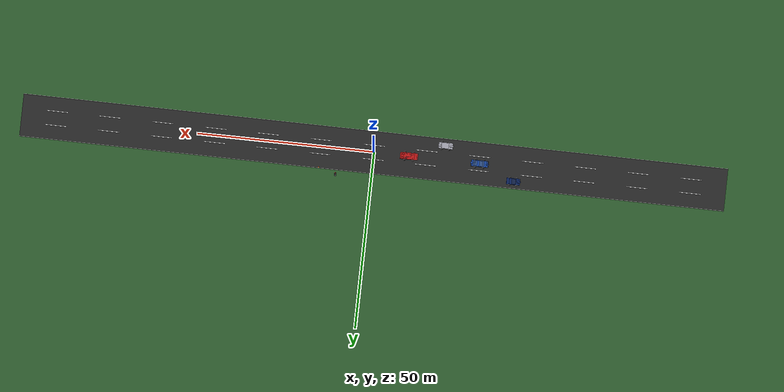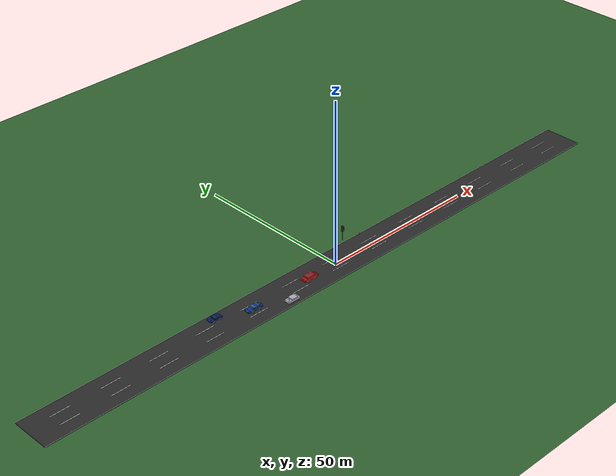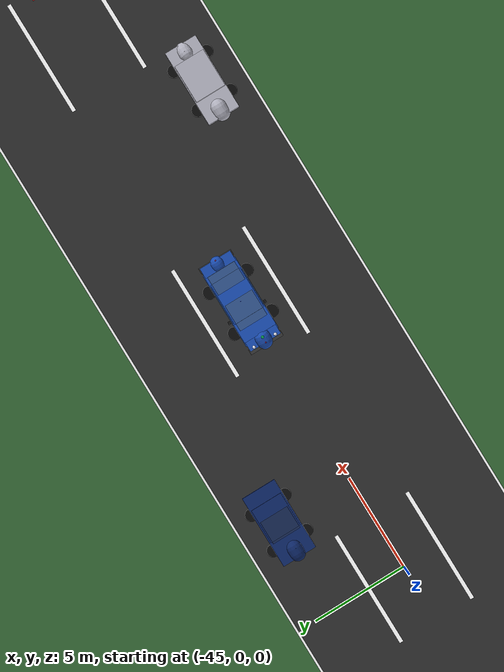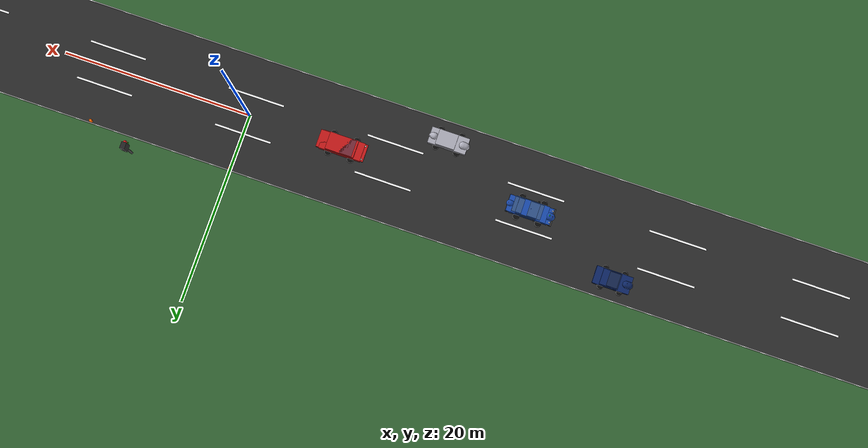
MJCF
<mujoco model="traffic_scene_v2">
  <compiler angle="degree" coordinate="local" inertiafromgeom="true" autolimits="true"/>

  <option timestep="0.001" gravity="0 0 -9.81" iterations="50" ls_iterations="20">
    <flag warmstart="enable" contact="enable" override="enable"/>
  </option>

  <visual>
    <global offwidth="1920" offheight="1080"/>
    <quality shadowsize="4096"/>
    <map force="0.1" fogstart="10" fogend="100" znear="0.05"/>
    <headlight ambient="0.6 0.6 0.6" diffuse="0.8 0.8 0.8"/>
    <rgba haze="0.8 0.9 1 1"/>
  </visual>

  <asset>
    <!-- 高质量纹理 -->
    <texture name="asphalt_hq" type="2d" builtin="checker" rgb1="0.15 0.15 0.15" rgb2="0.2 0.2 0.2" width="1024" height="1024"/>
    <material name="road_hq" texture="asphalt_hq" texrepeat="100 100" specular="0.05" shininess="0.05"/>

    <texture name="grass_tex" type="2d" builtin="flat" rgb1="0.2 0.4 0.2" width="256" height="256"/>
    <material name="grass_mat" texture="grass_tex" specular="0" shininess="0"/>

    <texture name="car_paint_blue" type="2d" builtin="flat" rgb1="0.1 0.3 0.7" width="64" height="64"/>
    <material name="car_blue" texture="car_paint_blue" specular="1" shininess="0.8" reflectance="0.5"/>

    <texture name="car_paint_red" type="2d" builtin="flat" rgb1="0.8 0.1 0.1" width="64" height="64"/>
    <material name="car_red" texture="car_paint_red" specular="1" shininess="0.8" reflectance="0.5"/>

    <texture name="car_paint_silver" type="2d" builtin="flat" rgb1="0.7 0.7 0.75" width="64" height="64"/>
    <material name="car_silver" texture="car_paint_silver" specular="1" shininess="0.9" reflectance="0.6"/>

    <texture name="glass_tex" type="2d" builtin="flat" rgb1="0.3 0.4 0.5" width="32" height="32"/>
    <material name="glass" texture="glass_tex" specular="1" shininess="1" reflectance="0.7" rgba="0.3 0.4 0.5 0.7"/>

    <texture name="chrome" type="2d" builtin="flat" rgb1="0.9 0.9 0.95" width="32" height="32"/>
    <material name="chrome_mat" texture="chrome" specular="1" shininess="1" reflectance="0.9"/>

    <texture name="rubber" type="2d" builtin="flat" rgb1="0.05 0.05 0.05" width="32" height="32"/>
    <material name="tire_mat" texture="rubber" specular="0.2" shininess="0.1"/>

    <texture name="white_line" type="2d" builtin="flat" rgb1="1 1 1" width="32" height="32"/>
    <material name="white_mat" texture="white_line" specular="0.3" shininess="0.2"/>

  </asset>

  <default>
    <!-- 车辆悬挂默认配置 -->
    <default class="suspension">
      <joint type="slide" axis="0 0 1" range="-0.1 0.1" stiffness="50000" damping="5000"/>
    </default>

    <!-- 转向关节配置 -->
    <default class="steering">
      <joint type="hinge" axis="0 0 1" range="-35 35" damping="10" armature="0.1"/>
    </default>

    <!-- 车轮滚动关节 -->
    <default class="wheel_roll">
      <joint type="hinge" axis="0 1 0" damping="0.5" armature="0.05"/>
    </default>

    <!-- 轮胎配置 -->
    <default class="tire">
      <geom type="cylinder" friction="1.5 0.8 0.5" condim="3" solimp="0.9 0.95 0.001" solref="0.005 1"/>
    </default>
  </default>

  <worldbody>
    <!-- 天空盒 -->

    <!-- 增强照明 -->
    <light directional="true" pos="0 0 30" dir="0 0 -1" diffuse="0.9 0.9 0.9" specular="0.3 0.3 0.3"/>
    <light directional="true" pos="50 50 40" dir="-1 -1 -1" diffuse="0.4 0.4 0.4"/>
    <light directional="true" pos="-50 50 40" dir="1 -1 -1" diffuse="0.4 0.4 0.4"/>
    <light directional="false" pos="0 0 10" diffuse="0.2 0.2 0.2" specular="0.1 0.1 0.1"/>

    <!-- 地面 -->
    <geom name="ground" type="plane" size="200 200 0.1" material="grass_mat" condim="3"/>

    <!-- 主路面 - 更长更宽 -->
    <geom name="main_road" type="box" size="100 6.0 0.08" pos="0 0 0.08" material="road_hq" mass="50000"/>

    <!-- 精细车道线 -->
    <geom name="left_edge" type="capsule" fromto="-100 6.0 0.17 100 6.0 0.17" size="0.06" rgba="1 1 1 1"/>
    <geom name="right_edge" type="capsule" fromto="-100 -6.0 0.17 100 -6.0 0.17" size="0.06" rgba="1 1 1 1"/>

    <!-- 虚线车道标记 -->
    <body name="lane_markers">
      <geom name="lm_1_1" type="box" size="3 0.1 0.01" pos="-90 2 0.17" rgba="1 1 1 1"/>
      <geom name="lm_1_2" type="box" size="3 0.1 0.01" pos="-75 2 0.17" rgba="1 1 1 1"/>
      <geom name="lm_1_3" type="box" size="3 0.1 0.01" pos="-60 2 0.17" rgba="1 1 1 1"/>
      <geom name="lm_1_4" type="box" size="3 0.1 0.01" pos="-45 2 0.17" rgba="1 1 1 1"/>
      <geom name="lm_1_5" type="box" size="3 0.1 0.01" pos="-30 2 0.17" rgba="1 1 1 1"/>
      <geom name="lm_1_6" type="box" size="3 0.1 0.01" pos="-15 2 0.17" rgba="1 1 1 1"/>
      <geom name="lm_1_7" type="box" size="3 0.1 0.01" pos="0 2 0.17" rgba="1 1 1 1"/>
      <geom name="lm_1_8" type="box" size="3 0.1 0.01" pos="15 2 0.17" rgba="1 1 1 1"/>
      <geom name="lm_1_9" type="box" size="3 0.1 0.01" pos="30 2 0.17" rgba="1 1 1 1"/>
      <geom name="lm_1_10" type="box" size="3 0.1 0.01" pos="45 2 0.17" rgba="1 1 1 1"/>
      <geom name="lm_1_11" type="box" size="3 0.1 0.01" pos="60 2 0.17" rgba="1 1 1 1"/>
      <geom name="lm_1_12" type="box" size="3 0.1 0.01" pos="75 2 0.17" rgba="1 1 1 1"/>
      <geom name="lm_1_13" type="box" size="3 0.1 0.01" pos="90 2 0.17" rgba="1 1 1 1"/>

      <geom name="lm_2_1" type="box" size="3 0.1 0.01" pos="-90 -2 0.17" rgba="1 1 1 1"/>
      <geom name="lm_2_2" type="box" size="3 0.1 0.01" pos="-75 -2 0.17" rgba="1 1 1 1"/>
      <geom name="lm_2_3" type="box" size="3 0.1 0.01" pos="-60 -2 0.17" rgba="1 1 1 1"/>
      <geom name="lm_2_4" type="box" size="3 0.1 0.01" pos="-45 -2 0.17" rgba="1 1 1 1"/>
      <geom name="lm_2_5" type="box" size="3 0.1 0.01" pos="-30 -2 0.17" rgba="1 1 1 1"/>
      <geom name="lm_2_6" type="box" size="3 0.1 0.01" pos="-15 -2 0.17" rgba="1 1 1 1"/>
      <geom name="lm_2_7" type="box" size="3 0.1 0.01" pos="0 -2 0.17" rgba="1 1 1 1"/>
      <geom name="lm_2_8" type="box" size="3 0.1 0.01" pos="15 -2 0.17" rgba="1 1 1 1"/>
      <geom name="lm_2_9" type="box" size="3 0.1 0.01" pos="30 -2 0.17" rgba="1 1 1 1"/>
      <geom name="lm_2_10" type="box" size="3 0.1 0.01" pos="45 -2 0.17" rgba="1 1 1 1"/>
      <geom name="lm_2_11" type="box" size="3 0.1 0.01" pos="60 -2 0.17" rgba="1 1 1 1"/>
      <geom name="lm_2_12" type="box" size="3 0.1 0.01" pos="75 -2 0.17" rgba="1 1 1 1"/>
      <geom name="lm_2_13" type="box" size="3 0.1 0.01" pos="90 -2 0.17" rgba="1 1 1 1"/>
    </body>

    <!-- 改进的主车 - 基于真实车辆尺寸 (类似轿车) -->
    <body name="ego_vehicle" pos="-30 0 0.5">
      <freejoint/>
      <inertial pos="0 0 0.15" mass="1450" diaginertia="580 1950 2180"/>

      <!-- 车身主体 - 更细致的分段 -->
      <!-- 底盘 -->
      <geom name="ego_chassis_bottom" type="box" size="2.0 0.9 0.08" pos="0 0 -0.02" material="car_blue"/>

      <!-- 车身中部 -->
      <geom name="ego_chassis_mid" type="box" size="1.8 0.88 0.3" pos="0 0 0.25" material="car_blue"/>

      <!-- 引擎盖（流线型） -->
      <geom name="ego_hood" type="box" size="0.85 0.85 0.12" pos="-1.45 0 0.18" material="car_blue"/>
      <geom name="ego_hood_front" type="capsule" fromto="-2.2 0 0.2 -2.0 0 0.25" size="0.4" material="car_blue"/>

      <!-- 车顶 -->
      <geom name="ego_roof" type="box" size="1.1 0.82 0.25" pos="0.3 0 0.65" material="car_blue"/>

      <!-- 后备箱 -->
      <geom name="ego_trunk" type="box" size="0.75 0.85 0.18" pos="1.6 0 0.22" material="car_blue"/>
      <geom name="ego_trunk_back" type="capsule" fromto="2.15 0 0.25 2.0 0 0.2" size="0.35" material="car_blue"/>

      <!-- 窗户 -->
      <geom name="ego_windshield" type="box" size="0.7 0.75 0.35" pos="-0.5 0 0.7" rgba="0.3 0.4 0.5 0.6"/>
      <geom name="ego_rear_window" type="box" size="0.5 0.75 0.3" pos="1.3 0 0.65" rgba="0.3 0.4 0.5 0.6"/>
      <geom name="ego_window_left" type="box" size="1.0 0.02 0.25" pos="0.3 0.88 0.6" rgba="0.3 0.4 0.5 0.6"/>
      <geom name="ego_window_right" type="box" size="1.0 0.02 0.25" pos="0.3 -0.88 0.6" rgba="0.3 0.4 0.5 0.6"/>

      <!-- 保险杠 -->
      <geom name="ego_bumper_front" type="box" size="0.15 0.9 0.12" pos="-2.3 0 0.08" rgba="0.2 0.2 0.2 1"/>
      <geom name="ego_bumper_rear" type="box" size="0.15 0.9 0.12" pos="2.25 0 0.08" rgba="0.2 0.2 0.2 1"/>

      <!-- 车灯 -->
      <geom name="ego_headlight_l" type="sphere" size="0.08" pos="-2.2 0.6 0.3" rgba="0.95 0.95 1 1"/>
      <geom name="ego_headlight_r" type="sphere" size="0.08" pos="-2.2 -0.6 0.3" rgba="0.95 0.95 1 1"/>
      <geom name="ego_taillight_l" type="sphere" size="0.07" pos="2.2 0.65 0.3" rgba="0.9 0.1 0.1 1"/>
      <geom name="ego_taillight_r" type="sphere" size="0.07" pos="2.2 -0.65 0.3" rgba="0.9 0.1 0.1 1"/>

      <!-- 后视镜 -->
      <geom name="ego_mirror_l" type="box" size="0.08 0.05 0.06" pos="-0.6 1.0 0.5" rgba="0.1 0.1 0.1 1"/>
      <geom name="ego_mirror_r" type="box" size="0.08 0.05 0.06" pos="-0.6 -1.0 0.5" rgba="0.1 0.1 0.1 1"/>

      <!-- 改进的悬挂和车轮系统 -->
      <!-- 左前悬挂和车轮 -->
      <body name="suspension_fl" pos="-1.15 1.0 0">
        <joint name="susp_fl" class="suspension"/>
        <inertial pos="0 0 0" mass="15" diaginertia="0.5 0.5 0.5"/>

        <body name="wheel_hub_fl" pos="0 0 -0.1">
          <joint name="steer_fl" class="steering"/>
          <inertial pos="0 0 0" mass="8" diaginertia="0.3 0.3 0.3"/>

          <body name="wheel_fl" pos="0 0.05 0">
            <joint name="roll_fl" class="wheel_roll"/>
            <inertial pos="0 0 0" mass="18" diaginertia="0.8 1.2 0.8"/>
            <geom name="tire_fl" type="cylinder" size="0.33 0.12" rgba="0.05 0.05 0.05 1" material="tire_mat" class="tire"/>
            <geom name="rim_fl" type="cylinder" size="0.25 0.11" pos="0 0 0" rgba="0.8 0.8 0.85 1" material="chrome_mat"/>
            <site name="contact_fl" pos="0 0 -0.33" size="0.01"/>
          </body>
        </body>
      </body>

      <!-- 右前悬挂和车轮 -->
      <body name="suspension_fr" pos="-1.15 -1.0 0">
        <joint name="susp_fr" class="suspension"/>
        <inertial pos="0 0 0" mass="15" diaginertia="0.5 0.5 0.5"/>

        <body name="wheel_hub_fr" pos="0 0 -0.1">
          <joint name="steer_fr" class="steering"/>
          <inertial pos="0 0 0" mass="8" diaginertia="0.3 0.3 0.3"/>

          <body name="wheel_fr" pos="0 -0.05 0">
            <joint name="roll_fr" class="wheel_roll"/>
            <inertial pos="0 0 0" mass="18" diaginertia="0.8 1.2 0.8"/>
            <geom name="tire_fr" type="cylinder" size="0.33 0.12" rgba="0.05 0.05 0.05 1" material="tire_mat" class="tire"/>
            <geom name="rim_fr" type="cylinder" size="0.25 0.11" pos="0 0 0" rgba="0.8 0.8 0.85 1" material="chrome_mat"/>
            <site name="contact_fr" pos="0 0 -0.33" size="0.01"/>
          </body>
        </body>
      </body>

      <!-- 左后悬挂和车轮 -->
      <body name="suspension_rl" pos="1.15 1.0 0">
        <joint name="susp_rl" class="suspension"/>
        <inertial pos="0 0 0" mass="15" diaginertia="0.5 0.5 0.5"/>

        <body name="wheel_rl" pos="0 0.05 -0.1">
          <joint name="roll_rl" class="wheel_roll"/>
          <inertial pos="0 0 0" mass="18" diaginertia="0.8 1.2 0.8"/>
          <geom name="tire_rl" type="cylinder" size="0.33 0.12" rgba="0.05 0.05 0.05 1" material="tire_mat" class="tire"/>
          <geom name="rim_rl" type="cylinder" size="0.25 0.11" pos="0 0 0" rgba="0.8 0.8 0.85 1" material="chrome_mat"/>
          <site name="contact_rl" pos="0 0 -0.33" size="0.01"/>
        </body>
      </body>

      <!-- 右后悬挂和车轮 -->
      <body name="suspension_rr" pos="1.15 -1.0 0">
        <joint name="susp_rr" class="suspension"/>
        <inertial pos="0 0 0" mass="15" diaginertia="0.5 0.5 0.5"/>

        <body name="wheel_rr" pos="0 -0.05 -0.1">
          <joint name="roll_rr" class="wheel_roll"/>
          <inertial pos="0 0 0" mass="18" diaginertia="0.8 1.2 0.8"/>
          <geom name="tire_rr" type="cylinder" size="0.33 0.12" rgba="0.05 0.05 0.05 1" material="tire_mat" class="tire"/>
          <geom name="rim_rr" type="cylinder" size="0.25 0.11" pos="0 0 0" rgba="0.8 0.8 0.85 1" material="chrome_mat"/>
          <site name="contact_rr" pos="0 0 -0.33" size="0.01"/>
        </body>
      </body>

      <!-- 传感器挂载点 -->
      <site name="lidar_mount" pos="-2.0 0 0.9" size="0.08" rgba="0 1 0 0.5"/>
      <site name="camera_front" pos="-2.3 0 0.6" size="0.04" rgba="1 0 0 0.5"/>
      <site name="camera_rear" pos="2.3 0 0.6" size="0.04" rgba="1 0 0 0.5"/>
      <site name="imu_center" pos="0 0 0.3" size="0.03" rgba="1 1 0 0.5"/>
      <site name="gps_antenna" pos="0 0 1.1" size="0.02" rgba="0 0 1 0.5"/>
    </body>

    <!-- 改进的NPC车辆 - 红色SUV -->
    <body name="npc_vehicle_1" pos="-10 0 0.5">
      <freejoint/>
      <inertial pos="0 0 0.2" mass="1800" diaginertia="700 2200 2400"/>

      <!-- SUV车身 -->
      <geom name="npc1_chassis" type="box" size="2.2 0.95 0.35" pos="0 0 0.15" material="car_red"/>
      <geom name="npc1_roof" type="box" size="1.5 0.9 0.3" pos="0 0 0.65" material="car_red"/>
      <geom name="npc1_hood" type="box" size="0.9 0.9 0.15" pos="-1.6 0 0.2" material="car_red"/>
      <geom name="npc1_trunk" type="box" size="0.8 0.9 0.25" pos="1.7 0 0.25" material="car_red"/>

      <!-- 窗户 -->
      <geom name="npc1_windows" type="box" size="1.3 0.85 0.25" pos="0 0 0.7" rgba="0.2 0.3 0.4 0.5"/>

      <!-- 车轮 -->
      <geom name="npc1_wheel_fl" type="cylinder" size="0.35 0.13" pos="-1.2 1.0 -0.15" rgba="0.05 0.05 0.05 1" material="tire_mat"/>
      <geom name="npc1_rim_fl" type="cylinder" size="0.28 0.12" pos="-1.2 1.0 -0.15" material="chrome_mat"/>
      <geom name="npc1_wheel_fr" type="cylinder" size="0.35 0.13" pos="-1.2 -1.0 -0.15" rgba="0.05 0.05 0.05 1" material="tire_mat"/>
      <geom name="npc1_rim_fr" type="cylinder" size="0.28 0.12" pos="-1.2 -1.0 -0.15" material="chrome_mat"/>
      <geom name="npc1_wheel_rl" type="cylinder" size="0.35 0.13" pos="1.2 1.0 -0.15" rgba="0.05 0.05 0.05 1" material="tire_mat"/>
      <geom name="npc1_rim_rl" type="cylinder" size="0.28 0.12" pos="1.2 1.0 -0.15" material="chrome_mat"/>
      <geom name="npc1_wheel_rr" type="cylinder" size="0.35 0.13" pos="1.2 -1.0 -0.15" rgba="0.05 0.05 0.05 1" material="tire_mat"/>
      <geom name="npc1_rim_rr" type="cylinder" size="0.28 0.12" pos="1.2 -1.0 -0.15" material="chrome_mat"/>

      <!-- 车灯 -->
      <geom name="npc1_headlight_l" type="sphere" size="0.08" pos="-2.3 0.7 0.35" rgba="1 1 0.95 1"/>
      <geom name="npc1_headlight_r" type="sphere" size="0.08" pos="-2.3 -0.7 0.35" rgba="1 1 0.95 1"/>
    </body>

    <!-- NPC车辆2 - 银色轿车 -->
    <body name="npc_vehicle_2" pos="-20 -4 0.45">
      <freejoint/>
      <inertial pos="0 0 0.15" mass="1350" diaginertia="550 1850 2050"/>

      <geom name="npc2_chassis" type="box" size="2.0 0.85 0.28" pos="0 0 0.12" material="car_silver"/>
      <geom name="npc2_roof" type="box" size="1.0 0.8 0.24" pos="0.2 0 0.52" material="car_silver"/>
      <geom name="npc2_hood" type="capsule" fromto="-1.8 0 0.2 -1.5 0 0.25" size="0.42" material="car_silver"/>
      <geom name="npc2_trunk" type="capsule" fromto="1.7 0 0.2 1.5 0 0.25" size="0.38" material="car_silver"/>

      <geom name="npc2_windows" type="box" size="0.9 0.75 0.2" pos="0.2 0 0.55" rgba="0.2 0.3 0.4 0.5"/>

      <!-- 车轮 -->
      <geom name="npc2_tire_fl" type="cylinder" size="0.32 0.11" pos="-1.1 0.92 -0.15" rgba="0.05 0.05 0.05 1" material="tire_mat"/>
      <geom name="npc2_rim_fl" type="cylinder" size="0.26 0.10" pos="-1.1 0.92 -0.15" material="chrome_mat"/>
      <geom name="npc2_tire_fr" type="cylinder" size="0.32 0.11" pos="-1.1 -0.92 -0.15" rgba="0.05 0.05 0.05 1" material="tire_mat"/>
      <geom name="npc2_rim_fr" type="cylinder" size="0.26 0.10" pos="-1.1 -0.92 -0.15" material="chrome_mat"/>
      <geom name="npc2_tire_rl" type="cylinder" size="0.32 0.11" pos="1.1 0.92 -0.15" rgba="0.05 0.05 0.05 1" material="tire_mat"/>
      <geom name="npc2_rim_rl" type="cylinder" size="0.26 0.10" pos="1.1 0.92 -0.15" material="chrome_mat"/>
      <geom name="npc2_tire_rr" type="cylinder" size="0.32 0.11" pos="1.1 -0.92 -0.15" rgba="0.05 0.05 0.05 1" material="tire_mat"/>
      <geom name="npc2_rim_rr" type="cylinder" size="0.26 0.10" pos="1.1 -0.92 -0.15" material="chrome_mat"/>
    </body>

    <!-- NPC车辆3 - 蓝色跑车 -->
    <body name="npc_vehicle_3" pos="-40 4 0.4">
      <freejoint/>
      <inertial pos="0 0 0.1" mass="1200" diaginertia="480 1650 1800"/>

      <!-- 跑车低矮车身 -->
      <geom name="npc3_chassis" type="box" size="1.9 0.9 0.22" pos="0 0 0.08" rgba="0.05 0.15 0.4 1"/>
      <geom name="npc3_cabin" type="box" size="0.9 0.82 0.18" pos="0.3 0 0.38" rgba="0.05 0.15 0.4 1"/>
      <geom name="npc3_hood" type="capsule" fromto="-1.7 0 0.15 -1.4 0 0.18" size="0.40" rgba="0.05 0.15 0.4 1"/>

      <geom name="npc3_windshield" type="box" size="0.6 0.75 0.15" pos="-0.1 0 0.42" rgba="0.15 0.2 0.3 0.6"/>

      <!-- 运动轮毂 -->
      <geom name="npc3_tire_fl" type="cylinder" size="0.31 0.14" pos="-1.0 0.95 -0.15" rgba="0.05 0.05 0.05 1" material="tire_mat"/>
      <geom name="npc3_rim_fl" type="cylinder" size="0.25 0.13" pos="-1.0 0.95 -0.15" rgba="0.9 0.9 0.95 1"/>
      <geom name="npc3_tire_fr" type="cylinder" size="0.31 0.14" pos="-1.0 -0.95 -0.15" rgba="0.05 0.05 0.05 1" material="tire_mat"/>
      <geom name="npc3_rim_fr" type="cylinder" size="0.25 0.13" pos="-1.0 -0.95 -0.15" rgba="0.9 0.9 0.95 1"/>
      <geom name="npc3_tire_rl" type="cylinder" size="0.31 0.14" pos="1.0 0.95 -0.15" rgba="0.05 0.05 0.05 1" material="tire_mat"/>
      <geom name="npc3_rim_rl" type="cylinder" size="0.25 0.13" pos="1.0 0.95 -0.15" rgba="0.9 0.9 0.95 1"/>
      <geom name="npc3_tire_rr" type="cylinder" size="0.31 0.14" pos="1.0 -0.95 -0.15" rgba="0.05 0.05 0.05 1" material="tire_mat"/>
      <geom name="npc3_rim_rr" type="cylinder" size="0.25 0.13" pos="1.0 -0.95 -0.15" rgba="0.9 0.9 0.95 1"/>
    </body>

    <!-- 交通设施 -->
    <body name="traffic_light" pos="10 7.5 0">
      <geom name="light_pole" type="cylinder" size="0.12 3.5" rgba="0.25 0.25 0.25 1"/>
      <body name="light_box" pos="0 0 3.5">
        <geom name="light_housing" type="box" size="0.25 0.35 0.8" rgba="0.15 0.15 0.15 1"/>
        <geom name="red_light" type="sphere" size="0.18" pos="0 -0.4 0.45" rgba="0.9 0.1 0.1 1"/>
        <geom name="yellow_light" type="sphere" size="0.18" pos="0 -0.4 0" rgba="0.3 0.3 0.05 1"/>
        <geom name="green_light" type="sphere" size="0.18" pos="0 -0.4 -0.45" rgba="0.1 0.9 0.1 1"/>
      </body>
    </body>

    <!-- 路障 -->
    <body name="cone_1" pos="0 5.8 0.15">
      <geom name="cone1" type="cylinder" fromto="0 0 -0.15 0 0 0.45" size="0.15 0.45" rgba="1 0.4 0 1"/>
    </body>
    <body name="cone_2" pos="15 5.8 0.15">
      <geom name="cone2" type="cylinder" fromto="0 0 -0.15 0 0 0.45" size="0.15 0.45" rgba="1 0.4 0 1"/>
    </body>
  </worldbody>

  <!-- 传感器 -->
  <sensor>
    <!-- 主车传感器 -->
    <framepos name="ego_position" objtype="site" objname="imu_center"/>
    <framequat name="ego_orientation" objtype="site" objname="imu_center"/>
    <framelinvel name="ego_linvel" objtype="site" objname="imu_center"/>
    <frameangvel name="ego_angvel" objtype="site" objname="imu_center"/>
    <accelerometer name="ego_accel" site="imu_center"/>
    <gyro name="ego_gyro" site="imu_center"/>

    <!-- 车轮传感器 -->
    <jointvel name="wheel_fl_speed" joint="roll_fl"/>
    <jointvel name="wheel_fr_speed" joint="roll_fr"/>
    <jointvel name="wheel_rl_speed" joint="roll_rl"/>
    <jointvel name="wheel_rr_speed" joint="roll_rr"/>

    <!-- 转向传感器 -->
    <jointpos name="steer_fl_angle" joint="steer_fl"/>
    <jointpos name="steer_fr_angle" joint="steer_fr"/>

    <!-- 悬挂传感器 -->
    <jointpos name="susp_fl_pos" joint="susp_fl"/>
    <jointpos name="susp_fr_pos" joint="susp_fr"/>
    <jointpos name="susp_rl_pos" joint="susp_rl"/>
    <jointpos name="susp_rr_pos" joint="susp_rr"/>

    <!-- 接触力传感器 -->
    <touch name="contact_fl" site="contact_fl"/>
    <touch name="contact_fr" site="contact_fr"/>
    <touch name="contact_rl" site="contact_rl"/>
    <touch name="contact_rr" site="contact_rr"/>
  </sensor>

  <!-- 执行器 -->
  <actuator>
    <!-- 转向系统（阿克曼转向） - 分离控制 -->
    <position name="steer_left" joint="steer_fl" kp="800" kv="80" ctrlrange="-0.61 0.61" forcerange="-300 300"/>
    <position name="steer_right" joint="steer_fr" kp="800" kv="80" ctrlrange="-0.61 0.61" forcerange="-300 300"/>

    <!-- 驱动系统（后轮驱动） - 分离控制 -->
    <motor name="drive_left" joint="roll_rl" gear="100" ctrlrange="-800 800" ctrllimited="true"/>
    <motor name="drive_right" joint="roll_rr" gear="100" ctrlrange="-800 800" ctrllimited="true"/>
  </actuator>

</mujoco>
